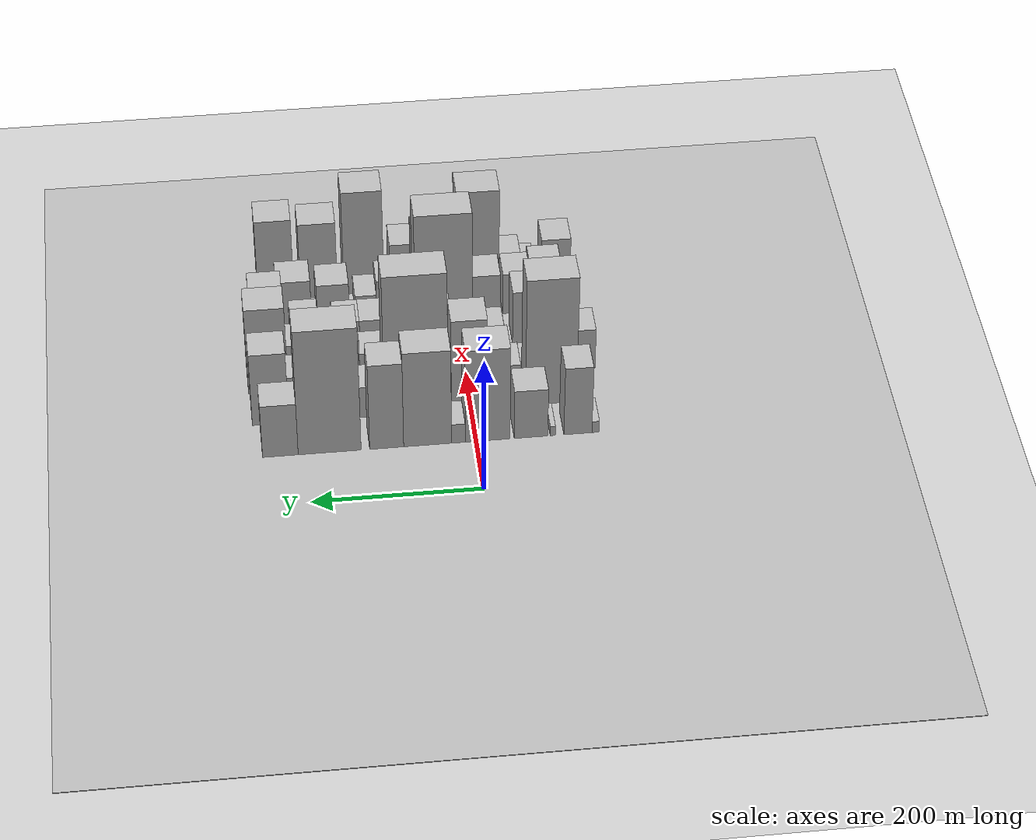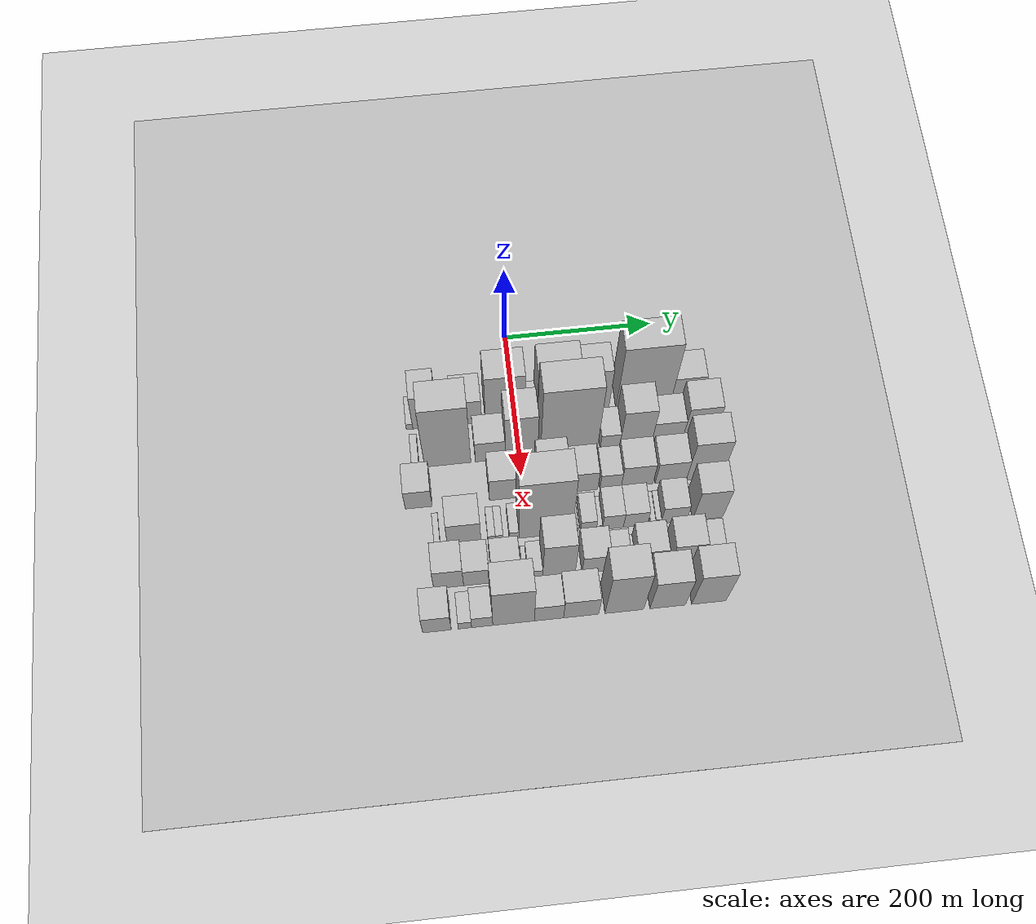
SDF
<sdf version="1.6">
 <world name="default">
  <include><name>ground_plane_1</name><uri>model://HANNAS_ground_plane</uri></include>
  <include>
   <name>ground_plane_2</name>
   <uri>model://HANNAS_ground_plane</uri>
   <pose>100 0 0  0 0 0</pose>
  </include>
  <model name="building_24">
   <static>1</static>
   <pose>100.0000 -140.2499 0 0.000000 0.000000 0.000000</pose>
   <link name="link">
    <pose>0 0 9.00 0 0 0</pose>
    <collision name="collision"><geometry><box><size>40.0000 8.7361 18.0000</size></box></geometry></collision>
    <visual name="visual">
     <cast_shadows>0</cast_shadows>
     <geometry><box><size>40.0000 8.7361 18.0000</size></box></geometry>
     <material>
      <script>
       <uri>model://HANNAS_wall/materials/scripts</uri>
       <uri>model://HANNAS_wall/materials/textures</uri>
       <name>vrc/HANNAS_wall</name>
      </script>
     </material>
    </visual>
   </link>
  </model>
  <model name="building_25">
   <static>1</static>
   <pose>100.0000 -119.2909 0 0.000000 0.000000 0.000000</pose>
   <link name="link">
    <pose>0 0 52.50 0 0 0</pose>
    <collision name="collision"><geometry><box><size>40.0000 33.1821 105.0000</size></box></geometry></collision>
    <visual name="visual">
     <cast_shadows>0</cast_shadows>
     <geometry><box><size>40.0000 33.1821 105.0000</size></box></geometry>
     <material>
      <script>
       <uri>model://HANNAS_wall/materials/scripts</uri>
       <uri>model://HANNAS_wall/materials/textures</uri>
       <name>vrc/HANNAS_wall</name>
      </script>
     </material>
    </visual>
   </link>
  </model>
  <model name="building_26">
   <static>1</static>
   <pose>100.0000 -89.6334 0 0.000000 0.000000 0.000000</pose>
   <link name="link">
    <pose>0 0 7.50 0 0 0</pose>
    <collision name="collision"><geometry><box><size>40.0000 6.1329 15.0000</size></box></geometry></collision>
    <visual name="visual">
     <cast_shadows>0</cast_shadows>
     <geometry><box><size>40.0000 6.1329 15.0000</size></box></geometry>
     <material>
      <script>
       <uri>model://HANNAS_wall/materials/scripts</uri>
       <uri>model://HANNAS_wall/materials/textures</uri>
       <name>vrc/HANNAS_wall</name>
      </script>
     </material>
    </visual>
   </link>
  </model>
  <model name="building_27">
   <static>1</static>
   <pose>100.0000 -63.7822 0 0.000000 0.000000 0.000000</pose>
   <link name="link">
    <pose>0 0 37.50 0 0 0</pose>
    <collision name="collision"><geometry><box><size>40.0000 39.5694 75.0000</size></box></geometry></collision>
    <visual name="visual">
     <cast_shadows>0</cast_shadows>
     <geometry><box><size>40.0000 39.5694 75.0000</size></box></geometry>
     <material>
      <script>
       <uri>model://HANNAS_wall/materials/scripts</uri>
       <uri>model://HANNAS_wall/materials/textures</uri>
       <name>vrc/HANNAS_wall</name>
      </script>
     </material>
    </visual>
   </link>
  </model>
  <model name="building_28">
   <static>1</static>
   <pose>100.0000 -12.6205 0 0.000000 0.000000 0.000000</pose>
   <link name="link">
    <pose>0 0 72.00 0 0 0</pose>
    <collision name="collision"><geometry><box><size>40.0000 52.7541 144.0000</size></box></geometry></collision>
    <visual name="visual">
     <cast_shadows>0</cast_shadows>
     <geometry><box><size>40.0000 52.7541 144.0000</size></box></geometry>
     <material>
      <script>
       <uri>model://HANNAS_wall/materials/scripts</uri>
       <uri>model://HANNAS_wall/materials/textures</uri>
       <name>vrc/HANNAS_wall</name>
      </script>
     </material>
    </visual>
   </link>
  </model>
  <model name="building_29">
   <static>1</static>
   <pose>100.0000 21.8884 0 0.000000 0.000000 0.000000</pose>
   <link name="link">
    <pose>0 0 15.00 0 0 0</pose>
    <collision name="collision"><geometry><box><size>40.0000 16.2637 30.0000</size></box></geometry></collision>
    <visual name="visual">
     <cast_shadows>0</cast_shadows>
     <geometry><box><size>40.0000 16.2637 30.0000</size></box></geometry>
     <material>
      <script>
       <uri>model://HANNAS_wall/materials/scripts</uri>
       <uri>model://HANNAS_wall/materials/textures</uri>
       <name>vrc/HANNAS_wall</name>
      </script>
     </material>
    </visual>
   </link>
  </model>
  <model name="building_30">
   <static>1</static>
   <pose>100.0000 58.0798 0 0.000000 0.000000 0.000000</pose>
   <link name="link">
    <pose>0 0 73.50 0 0 0</pose>
    <collision name="collision"><geometry><box><size>40.0000 56.1190 147.0000</size></box></geometry></collision>
    <visual name="visual">
     <cast_shadows>0</cast_shadows>
     <geometry><box><size>40.0000 56.1190 147.0000</size></box></geometry>
     <material>
      <script>
       <uri>model://HANNAS_wall/materials/scripts</uri>
       <uri>model://HANNAS_wall/materials/textures</uri>
       <name>vrc/HANNAS_wall</name>
      </script>
     </material>
    </visual>
   </link>
  </model>
  <model name="building_31">
   <static>1</static>
   <pose>100.0000 106.1186 0 0.000000 0.000000 0.000000</pose>
   <link name="link">
    <pose>0 0 66.00 0 0 0</pose>
    <collision name="collision"><geometry><box><size>40.0000 39.9587 132.0000</size></box></geometry></collision>
    <visual name="visual">
     <cast_shadows>0</cast_shadows>
     <geometry><box><size>40.0000 39.9587 132.0000</size></box></geometry>
     <material>
      <script>
       <uri>model://HANNAS_wall/materials/scripts</uri>
       <uri>model://HANNAS_wall/materials/textures</uri>
       <name>vrc/HANNAS_wall</name>
      </script>
     </material>
    </visual>
   </link>
  </model>
  <model name="building_32">
   <static>1</static>
   <pose>100.0000 172.9153 0 0.000000 0.000000 0.000000</pose>
   <link name="link">
    <pose>0 0 96.00 0 0 0</pose>
    <collision name="collision"><geometry><box><size>40.0000 73.6347 192.0000</size></box></geometry></collision>
    <visual name="visual">
     <cast_shadows>0</cast_shadows>
     <geometry><box><size>40.0000 73.6347 192.0000</size></box></geometry>
     <material>
      <script>
       <uri>model://HANNAS_wall/materials/scripts</uri>
       <uri>model://HANNAS_wall/materials/textures</uri>
       <name>vrc/HANNAS_wall</name>
      </script>
     </material>
    </visual>
   </link>
  </model>
  <model name="building_33">
   <static>1</static>
   <pose>100.0000 230.5214 0 0.000000 0.000000 0.000000</pose>
   <link name="link">
    <pose>0 0 40.50 0 0 0</pose>
    <collision name="collision"><geometry><box><size>40.0000 41.5774 81.0000</size></box></geometry></collision>
    <visual name="visual">
     <cast_shadows>0</cast_shadows>
     <geometry><box><size>40.0000 41.5774 81.0000</size></box></geometry>
     <material>
      <script>
       <uri>model://HANNAS_wall/materials/scripts</uri>
       <uri>model://HANNAS_wall/materials/textures</uri>
       <name>vrc/HANNAS_wall</name>
      </script>
     </material>
    </visual>
   </link>
  </model>
  <model name="building_82">
   <static>1</static>
   <pose>155.0000 -136.6144 0 0.000000 0.000000 0.000000</pose>
   <link name="link">
    <pose>0 0 10.50 0 0 0</pose>
    <collision name="collision"><geometry><box><size>40.0000 9.5594 21.0000</size></box></geometry></collision>
    <visual name="visual">
     <cast_shadows>0</cast_shadows>
     <geometry><box><size>40.0000 9.5594 21.0000</size></box></geometry>
     <material>
      <script>
       <uri>model://HANNAS_wall/materials/scripts</uri>
       <uri>model://HANNAS_wall/materials/textures</uri>
       <name>vrc/HANNAS_wall</name>
      </script>
     </material>
    </visual>
   </link>
  </model>
  <model name="building_83">
   <static>1</static>
   <pose>155.0000 -94.3068 0 0.000000 0.000000 0.000000</pose>
   <link name="link">
    <pose>0 0 97.50 0 0 0</pose>
    <collision name="collision"><geometry><box><size>40.0000 61.0559 195.0000</size></box></geometry></collision>
    <visual name="visual">
     <cast_shadows>0</cast_shadows>
     <geometry><box><size>40.0000 61.0559 195.0000</size></box></geometry>
     <material>
      <script>
       <uri>model://HANNAS_wall/materials/scripts</uri>
       <uri>model://HANNAS_wall/materials/textures</uri>
       <name>vrc/HANNAS_wall</name>
      </script>
     </material>
    </visual>
   </link>
  </model>
  <model name="building_84">
   <static>1</static>
   <pose>155.0000 -38.0167 0 0.000000 0.000000 0.000000</pose>
   <link name="link">
    <pose>0 0 33.00 0 0 0</pose>
    <collision name="collision"><geometry><box><size>40.0000 39.5242 66.0000</size></box></geometry></collision>
    <visual name="visual">
     <cast_shadows>0</cast_shadows>
     <geometry><box><size>40.0000 39.5242 66.0000</size></box></geometry>
     <material>
      <script>
       <uri>model://HANNAS_wall/materials/scripts</uri>
       <uri>model://HANNAS_wall/materials/textures</uri>
       <name>vrc/HANNAS_wall</name>
      </script>
     </material>
    </visual>
   </link>
  </model>
  <model name="building_85">
   <static>1</static>
   <pose>155.0000 3.1084 0 0.000000 0.000000 0.000000</pose>
   <link name="link">
    <pose>0 0 70.50 0 0 0</pose>
    <collision name="collision"><geometry><box><size>40.0000 42.7261 141.0000</size></box></geometry></collision>
    <visual name="visual">
     <cast_shadows>0</cast_shadows>
     <geometry><box><size>40.0000 42.7261 141.0000</size></box></geometry>
     <material>
      <script>
       <uri>model://HANNAS_wall/materials/scripts</uri>
       <uri>model://HANNAS_wall/materials/textures</uri>
       <name>vrc/HANNAS_wall</name>
      </script>
     </material>
    </visual>
   </link>
  </model>
  <model name="building_86">
   <static>1</static>
   <pose>155.0000 66.1215 0 0.000000 0.000000 0.000000</pose>
   <link name="link">
    <pose>0 0 108.00 0 0 0</pose>
    <collision name="collision"><geometry><box><size>40.0000 75.3001 216.0000</size></box></geometry></collision>
    <visual name="visual">
     <cast_shadows>0</cast_shadows>
     <geometry><box><size>40.0000 75.3001 216.0000</size></box></geometry>
     <material>
      <script>
       <uri>model://HANNAS_wall/materials/scripts</uri>
       <uri>model://HANNAS_wall/materials/textures</uri>
       <name>vrc/HANNAS_wall</name>
      </script>
     </material>
    </visual>
   </link>
  </model>
  <model name="building_87">
   <static>1</static>
   <pose>155.0000 120.7336 0 0.000000 0.000000 0.000000</pose>
   <link name="link">
    <pose>0 0 24.00 0 0 0</pose>
    <collision name="collision"><geometry><box><size>40.0000 25.9242 48.0000</size></box></geometry></collision>
    <visual name="visual">
     <cast_shadows>0</cast_shadows>
     <geometry><box><size>40.0000 25.9242 48.0000</size></box></geometry>
     <material>
      <script>
       <uri>model://HANNAS_wall/materials/scripts</uri>
       <uri>model://HANNAS_wall/materials/textures</uri>
       <name>vrc/HANNAS_wall</name>
      </script>
     </material>
    </visual>
   </link>
  </model>
  <model name="building_88">
   <static>1</static>
   <pose>155.0000 154.8827 0 0.000000 0.000000 0.000000</pose>
   <link name="link">
    <pose>0 0 60.00 0 0 0</pose>
    <collision name="collision"><geometry><box><size>40.0000 42.3740 120.0000</size></box></geometry></collision>
    <visual name="visual">
     <cast_shadows>0</cast_shadows>
     <geometry><box><size>40.0000 42.3740 120.0000</size></box></geometry>
     <material>
      <script>
       <uri>model://HANNAS_wall/materials/scripts</uri>
       <uri>model://HANNAS_wall/materials/textures</uri>
       <name>vrc/HANNAS_wall</name>
      </script>
     </material>
    </visual>
   </link>
  </model>
  <model name="building_89">
   <static>1</static>
   <pose>155.0000 196.5788 0 0.000000 0.000000 0.000000</pose>
   <link name="link">
    <pose>0 0 36.00 0 0 0</pose>
    <collision name="collision"><geometry><box><size>40.0000 41.0181 72.0000</size></box></geometry></collision>
    <visual name="visual">
     <cast_shadows>0</cast_shadows>
     <geometry><box><size>40.0000 41.0181 72.0000</size></box></geometry>
     <material>
      <script>
       <uri>model://HANNAS_wall/materials/scripts</uri>
       <uri>model://HANNAS_wall/materials/textures</uri>
       <name>vrc/HANNAS_wall</name>
      </script>
     </material>
    </visual>
   </link>
  </model>
  <model name="building_90">
   <static>1</static>
   <pose>155.0000 238.5612 0 0.000000 0.000000 0.000000</pose>
   <link name="link">
    <pose>0 0 55.50 0 0 0</pose>
    <collision name="collision"><geometry><box><size>40.0000 42.9466 111.0000</size></box></geometry></collision>
    <visual name="visual">
     <cast_shadows>0</cast_shadows>
     <geometry><box><size>40.0000 42.9466 111.0000</size></box></geometry>
     <material>
      <script>
       <uri>model://HANNAS_wall/materials/scripts</uri>
       <uri>model://HANNAS_wall/materials/textures</uri>
       <name>vrc/HANNAS_wall</name>
      </script>
     </material>
    </visual>
   </link>
  </model>
  <model name="building_134">
   <static>1</static>
   <pose>210.0000 -137.1016 0 0.000000 0.000000 0.000000</pose>
   <link name="link">
    <pose>0 0 31.50 0 0 0</pose>
    <collision name="collision"><geometry><box><size>40.0000 34.9675 63.0000</size></box></geometry></collision>
    <visual name="visual">
     <cast_shadows>0</cast_shadows>
     <geometry><box><size>40.0000 34.9675 63.0000</size></box></geometry>
     <material>
      <script>
       <uri>model://HANNAS_wall/materials/scripts</uri>
       <uri>model://HANNAS_wall/materials/textures</uri>
       <name>vrc/HANNAS_wall</name>
      </script>
     </material>
    </visual>
   </link>
  </model>
  <model name="building_135">
   <static>1</static>
   <pose>210.0000 -24.8604 0 0.000000 0.000000 0.000000</pose>
   <link name="link">
    <pose>0 0 37.50 0 0 0</pose>
    <collision name="collision"><geometry><box><size>40.0000 39.8383 75.0000</size></box></geometry></collision>
    <visual name="visual">
     <cast_shadows>0</cast_shadows>
     <geometry><box><size>40.0000 39.8383 75.0000</size></box></geometry>
     <material>
      <script>
       <uri>model://HANNAS_wall/materials/scripts</uri>
       <uri>model://HANNAS_wall/materials/textures</uri>
       <name>vrc/HANNAS_wall</name>
      </script>
     </material>
    </visual>
   </link>
  </model>
  <model name="building_136">
   <static>1</static>
   <pose>210.0000 5.1250 0 0.000000 0.000000 0.000000</pose>
   <link name="link">
    <pose>0 0 19.50 0 0 0</pose>
    <collision name="collision"><geometry><box><size>40.0000 20.1325 39.0000</size></box></geometry></collision>
    <visual name="visual">
     <cast_shadows>0</cast_shadows>
     <geometry><box><size>40.0000 20.1325 39.0000</size></box></geometry>
     <material>
      <script>
       <uri>model://HANNAS_wall/materials/scripts</uri>
       <uri>model://HANNAS_wall/materials/textures</uri>
       <name>vrc/HANNAS_wall</name>
      </script>
     </material>
    </visual>
   </link>
  </model>
  <model name="building_137">
   <static>1</static>
   <pose>210.0000 38.1021 0 0.000000 0.000000 0.000000</pose>
   <link name="link">
    <pose>0 0 51.00 0 0 0</pose>
    <collision name="collision"><geometry><box><size>40.0000 39.8217 102.0000</size></box></geometry></collision>
    <visual name="visual">
     <cast_shadows>0</cast_shadows>
     <geometry><box><size>40.0000 39.8217 102.0000</size></box></geometry>
     <material>
      <script>
       <uri>model://HANNAS_wall/materials/scripts</uri>
       <uri>model://HANNAS_wall/materials/textures</uri>
       <name>vrc/HANNAS_wall</name>
      </script>
     </material>
    </visual>
   </link>
  </model>
  <model name="building_138">
   <static>1</static>
   <pose>210.0000 77.6585 0 0.000000 0.000000 0.000000</pose>
   <link name="link">
    <pose>0 0 33.00 0 0 0</pose>
    <collision name="collision"><geometry><box><size>40.0000 39.2911 66.0000</size></box></geometry></collision>
    <visual name="visual">
     <cast_shadows>0</cast_shadows>
     <geometry><box><size>40.0000 39.2911 66.0000</size></box></geometry>
     <material>
      <script>
       <uri>model://HANNAS_wall/materials/scripts</uri>
       <uri>model://HANNAS_wall/materials/textures</uri>
       <name>vrc/HANNAS_wall</name>
      </script>
     </material>
    </visual>
   </link>
  </model>
  <model name="building_139">
   <static>1</static>
   <pose>210.0000 114.2788 0 0.000000 0.000000 0.000000</pose>
   <link name="link">
    <pose>0 0 25.50 0 0 0</pose>
    <collision name="collision"><geometry><box><size>40.0000 27.9495 51.0000</size></box></geometry></collision>
    <visual name="visual">
     <cast_shadows>0</cast_shadows>
     <geometry><box><size>40.0000 27.9495 51.0000</size></box></geometry>
     <material>
      <script>
       <uri>model://HANNAS_wall/materials/scripts</uri>
       <uri>model://HANNAS_wall/materials/textures</uri>
       <name>vrc/HANNAS_wall</name>
      </script>
     </material>
    </visual>
   </link>
  </model>
  <model name="building_140">
   <static>1</static>
   <pose>210.0000 149.2164 0 0.000000 0.000000 0.000000</pose>
   <link name="link">
    <pose>0 0 36.00 0 0 0</pose>
    <collision name="collision"><geometry><box><size>40.0000 41.9258 72.0000</size></box></geometry></collision>
    <visual name="visual">
     <cast_shadows>0</cast_shadows>
     <geometry><box><size>40.0000 41.9258 72.0000</size></box></geometry>
     <material>
      <script>
       <uri>model://HANNAS_wall/materials/scripts</uri>
       <uri>model://HANNAS_wall/materials/textures</uri>
       <name>vrc/HANNAS_wall</name>
      </script>
     </material>
    </visual>
   </link>
  </model>
  <model name="building_141">
   <static>1</static>
   <pose>210.0000 193.6788 0 0.000000 0.000000 0.000000</pose>
   <link name="link">
    <pose>0 0 36.00 0 0 0</pose>
    <collision name="collision"><geometry><box><size>40.0000 40.9989 72.0000</size></box></geometry></collision>
    <visual name="visual">
     <cast_shadows>0</cast_shadows>
     <geometry><box><size>40.0000 40.9989 72.0000</size></box></geometry>
     <material>
      <script>
       <uri>model://HANNAS_wall/materials/scripts</uri>
       <uri>model://HANNAS_wall/materials/textures</uri>
       <name>vrc/HANNAS_wall</name>
      </script>
     </material>
    </visual>
   </link>
  </model>
  <model name="building_142">
   <static>1</static>
   <pose>210.0000 237.8310 0 0.000000 0.000000 0.000000</pose>
   <link name="link">
    <pose>0 0 66.00 0 0 0</pose>
    <collision name="collision"><geometry><box><size>40.0000 47.3056 132.0000</size></box></geometry></collision>
    <visual name="visual">
     <cast_shadows>0</cast_shadows>
     <geometry><box><size>40.0000 47.3056 132.0000</size></box></geometry>
     <material>
      <script>
       <uri>model://HANNAS_wall/materials/scripts</uri>
       <uri>model://HANNAS_wall/materials/textures</uri>
       <name>vrc/HANNAS_wall</name>
      </script>
     </material>
    </visual>
   </link>
  </model>
  <model name="building_184">
   <static>1</static>
   <pose>265.0000 -117.5953 0 0.000000 0.000000 0.000000</pose>
   <link name="link">
    <pose>0 0 9.00 0 0 0</pose>
    <collision name="collision"><geometry><box><size>40.0000 7.7228 18.0000</size></box></geometry></collision>
    <visual name="visual">
     <cast_shadows>0</cast_shadows>
     <geometry><box><size>40.0000 7.7228 18.0000</size></box></geometry>
     <material>
      <script>
       <uri>model://HANNAS_wall/materials/scripts</uri>
       <uri>model://HANNAS_wall/materials/textures</uri>
       <name>vrc/HANNAS_wall</name>
      </script>
     </material>
    </visual>
   </link>
  </model>
  <model name="building_185">
   <static>1</static>
   <pose>265.0000 -83.0072 0 0.000000 0.000000 0.000000</pose>
   <link name="link">
    <pose>0 0 40.50 0 0 0</pose>
    <collision name="collision"><geometry><box><size>40.0000 43.4536 81.0000</size></box></geometry></collision>
    <visual name="visual">
     <cast_shadows>0</cast_shadows>
     <geometry><box><size>40.0000 43.4536 81.0000</size></box></geometry>
     <material>
      <script>
       <uri>model://HANNAS_wall/materials/scripts</uri>
       <uri>model://HANNAS_wall/materials/textures</uri>
       <name>vrc/HANNAS_wall</name>
      </script>
     </material>
    </visual>
   </link>
  </model>
  <model name="building_186">
   <static>1</static>
   <pose>265.0000 -47.4554 0 0.000000 0.000000 0.000000</pose>
   <link name="link">
    <pose>0 0 10.50 0 0 0</pose>
    <collision name="collision"><geometry><box><size>40.0000 9.6500 21.0000</size></box></geometry></collision>
    <visual name="visual">
     <cast_shadows>0</cast_shadows>
     <geometry><box><size>40.0000 9.6500 21.0000</size></box></geometry>
     <material>
      <script>
       <uri>model://HANNAS_wall/materials/scripts</uri>
       <uri>model://HANNAS_wall/materials/textures</uri>
       <name>vrc/HANNAS_wall</name>
      </script>
     </material>
    </visual>
   </link>
  </model>
  <model name="building_187">
   <static>1</static>
   <pose>265.0000 -37.6327 0 0.000000 0.000000 0.000000</pose>
   <link name="link">
    <pose>0 0 10.50 0 0 0</pose>
    <collision name="collision"><geometry><box><size>40.0000 9.9954 21.0000</size></box></geometry></collision>
    <visual name="visual">
     <cast_shadows>0</cast_shadows>
     <geometry><box><size>40.0000 9.9954 21.0000</size></box></geometry>
     <material>
      <script>
       <uri>model://HANNAS_wall/materials/scripts</uri>
       <uri>model://HANNAS_wall/materials/textures</uri>
       <name>vrc/HANNAS_wall</name>
      </script>
     </material>
    </visual>
   </link>
  </model>
  <model name="building_188">
   <static>1</static>
   <pose>265.0000 -18.4343 0 0.000000 0.000000 0.000000</pose>
   <link name="link">
    <pose>0 0 13.50 0 0 0</pose>
    <collision name="collision"><geometry><box><size>40.0000 12.4015 27.0000</size></box></geometry></collision>
    <visual name="visual">
     <cast_shadows>0</cast_shadows>
     <geometry><box><size>40.0000 12.4015 27.0000</size></box></geometry>
     <material>
      <script>
       <uri>model://HANNAS_wall/materials/scripts</uri>
       <uri>model://HANNAS_wall/materials/textures</uri>
       <name>vrc/HANNAS_wall</name>
      </script>
     </material>
    </visual>
   </link>
  </model>
  <model name="building_189">
   <static>1</static>
   <pose>265.0000 22.1386 0 0.000000 0.000000 0.000000</pose>
   <link name="link">
    <pose>0 0 105.00 0 0 0</pose>
    <collision name="collision"><geometry><box><size>40.0000 68.7443 210.0000</size></box></geometry></collision>
    <visual name="visual">
     <cast_shadows>0</cast_shadows>
     <geometry><box><size>40.0000 68.7443 210.0000</size></box></geometry>
     <material>
      <script>
       <uri>model://HANNAS_wall/materials/scripts</uri>
       <uri>model://HANNAS_wall/materials/textures</uri>
       <name>vrc/HANNAS_wall</name>
      </script>
     </material>
    </visual>
   </link>
  </model>
  <model name="building_190">
   <static>1</static>
   <pose>265.0000 60.6713 0 0.000000 0.000000 0.000000</pose>
   <link name="link">
    <pose>0 0 9.00 0 0 0</pose>
    <collision name="collision"><geometry><box><size>40.0000 8.3212 18.0000</size></box></geometry></collision>
    <visual name="visual">
     <cast_shadows>0</cast_shadows>
     <geometry><box><size>40.0000 8.3212 18.0000</size></box></geometry>
     <material>
      <script>
       <uri>model://HANNAS_wall/materials/scripts</uri>
       <uri>model://HANNAS_wall/materials/textures</uri>
       <name>vrc/HANNAS_wall</name>
      </script>
     </material>
    </visual>
   </link>
  </model>
  <model name="building_191">
   <static>1</static>
   <pose>265.0000 78.1643 0 0.000000 0.000000 0.000000</pose>
   <link name="link">
    <pose>0 0 19.50 0 0 0</pose>
    <collision name="collision"><geometry><box><size>40.0000 20.6649 39.0000</size></box></geometry></collision>
    <visual name="visual">
     <cast_shadows>0</cast_shadows>
     <geometry><box><size>40.0000 20.6649 39.0000</size></box></geometry>
     <material>
      <script>
       <uri>model://HANNAS_wall/materials/scripts</uri>
       <uri>model://HANNAS_wall/materials/textures</uri>
       <name>vrc/HANNAS_wall</name>
      </script>
     </material>
    </visual>
   </link>
  </model>
  <model name="building_192">
   <static>1</static>
   <pose>265.0000 92.3054 0 0.000000 0.000000 0.000000</pose>
   <link name="link">
    <pose>0 0 9.00 0 0 0</pose>
    <collision name="collision"><geometry><box><size>40.0000 7.6173 18.0000</size></box></geometry></collision>
    <visual name="visual">
     <cast_shadows>0</cast_shadows>
     <geometry><box><size>40.0000 7.6173 18.0000</size></box></geometry>
     <material>
      <script>
       <uri>model://HANNAS_wall/materials/scripts</uri>
       <uri>model://HANNAS_wall/materials/textures</uri>
       <name>vrc/HANNAS_wall</name>
      </script>
     </material>
    </visual>
   </link>
  </model>
  <model name="building_193">
   <static>1</static>
   <pose>265.0000 109.8860 0 0.000000 0.000000 0.000000</pose>
   <link name="link">
    <pose>0 0 27.00 0 0 0</pose>
    <collision name="collision"><geometry><box><size>40.0000 27.5439 54.0000</size></box></geometry></collision>
    <visual name="visual">
     <cast_shadows>0</cast_shadows>
     <geometry><box><size>40.0000 27.5439 54.0000</size></box></geometry>
     <material>
      <script>
       <uri>model://HANNAS_wall/materials/scripts</uri>
       <uri>model://HANNAS_wall/materials/textures</uri>
       <name>vrc/HANNAS_wall</name>
      </script>
     </material>
    </visual>
   </link>
  </model>
  <model name="building_194">
   <static>1</static>
   <pose>265.0000 139.3645 0 0.000000 0.000000 0.000000</pose>
   <link name="link">
    <pose>0 0 27.00 0 0 0</pose>
    <collision name="collision"><geometry><box><size>40.0000 31.4130 54.0000</size></box></geometry></collision>
    <visual name="visual">
     <cast_shadows>0</cast_shadows>
     <geometry><box><size>40.0000 31.4130 54.0000</size></box></geometry>
     <material>
      <script>
       <uri>model://HANNAS_wall/materials/scripts</uri>
       <uri>model://HANNAS_wall/materials/textures</uri>
       <name>vrc/HANNAS_wall</name>
      </script>
     </material>
    </visual>
   </link>
  </model>
  <model name="building_195">
   <static>1</static>
   <pose>265.0000 161.6442 0 0.000000 0.000000 0.000000</pose>
   <link name="link">
    <pose>0 0 7.50 0 0 0</pose>
    <collision name="collision"><geometry><box><size>40.0000 7.1464 15.0000</size></box></geometry></collision>
    <visual name="visual">
     <cast_shadows>0</cast_shadows>
     <geometry><box><size>40.0000 7.1464 15.0000</size></box></geometry>
     <material>
      <script>
       <uri>model://HANNAS_wall/materials/scripts</uri>
       <uri>model://HANNAS_wall/materials/textures</uri>
       <name>vrc/HANNAS_wall</name>
      </script>
     </material>
    </visual>
   </link>
  </model>
  <model name="building_196">
   <static>1</static>
   <pose>265.0000 168.8828 0 0.000000 0.000000 0.000000</pose>
   <link name="link">
    <pose>0 0 9.00 0 0 0</pose>
    <collision name="collision"><geometry><box><size>40.0000 7.3307 18.0000</size></box></geometry></collision>
    <visual name="visual">
     <cast_shadows>0</cast_shadows>
     <geometry><box><size>40.0000 7.3307 18.0000</size></box></geometry>
     <material>
      <script>
       <uri>model://HANNAS_wall/materials/scripts</uri>
       <uri>model://HANNAS_wall/materials/textures</uri>
       <name>vrc/HANNAS_wall</name>
      </script>
     </material>
    </visual>
   </link>
  </model>
  <model name="building_197">
   <static>1</static>
   <pose>265.0000 189.3109 0 0.000000 0.000000 0.000000</pose>
   <link name="link">
    <pose>0 0 30.00 0 0 0</pose>
    <collision name="collision"><geometry><box><size>40.0000 33.5255 60.0000</size></box></geometry></collision>
    <visual name="visual">
     <cast_shadows>0</cast_shadows>
     <geometry><box><size>40.0000 33.5255 60.0000</size></box></geometry>
     <material>
      <script>
       <uri>model://HANNAS_wall/materials/scripts</uri>
       <uri>model://HANNAS_wall/materials/textures</uri>
       <name>vrc/HANNAS_wall</name>
      </script>
     </material>
    </visual>
   </link>
  </model>
  <model name="building_198">
   <static>1</static>
   <pose>265.0000 233.9540 0 0.000000 0.000000 0.000000</pose>
   <link name="link">
    <pose>0 0 54.00 0 0 0</pose>
    <collision name="collision"><geometry><box><size>40.0000 39.7608 108.0000</size></box></geometry></collision>
    <visual name="visual">
     <cast_shadows>0</cast_shadows>
     <geometry><box><size>40.0000 39.7608 108.0000</size></box></geometry>
     <material>
      <script>
       <uri>model://HANNAS_wall/materials/scripts</uri>
       <uri>model://HANNAS_wall/materials/textures</uri>
       <name>vrc/HANNAS_wall</name>
      </script>
     </material>
    </visual>
   </link>
  </model>
  <model name="building_243">
   <static>1</static>
   <pose>320.0000 -108.0655 0 0.000000 0.000000 0.000000</pose>
   <link name="link">
    <pose>0 0 36.00 0 0 0</pose>
    <collision name="collision"><geometry><box><size>40.0000 37.9996 72.0000</size></box></geometry></collision>
    <visual name="visual">
     <cast_shadows>0</cast_shadows>
     <geometry><box><size>40.0000 37.9996 72.0000</size></box></geometry>
     <material>
      <script>
       <uri>model://HANNAS_wall/materials/scripts</uri>
       <uri>model://HANNAS_wall/materials/textures</uri>
       <name>vrc/HANNAS_wall</name>
      </script>
     </material>
    </visual>
   </link>
  </model>
  <model name="building_244">
   <static>1</static>
   <pose>320.0000 -72.4253 0 0.000000 0.000000 0.000000</pose>
   <link name="link">
    <pose>0 0 31.50 0 0 0</pose>
    <collision name="collision"><geometry><box><size>40.0000 33.2808 63.0000</size></box></geometry></collision>
    <visual name="visual">
     <cast_shadows>0</cast_shadows>
     <geometry><box><size>40.0000 33.2808 63.0000</size></box></geometry>
     <material>
      <script>
       <uri>model://HANNAS_wall/materials/scripts</uri>
       <uri>model://HANNAS_wall/materials/textures</uri>
       <name>vrc/HANNAS_wall</name>
      </script>
     </material>
    </visual>
   </link>
  </model>
  <model name="building_245">
   <static>1</static>
   <pose>320.0000 -34.4073 0 0.000000 0.000000 0.000000</pose>
   <link name="link">
    <pose>0 0 31.50 0 0 0</pose>
    <collision name="collision"><geometry><box><size>40.0000 36.7551 63.0000</size></box></geometry></collision>
    <visual name="visual">
     <cast_shadows>0</cast_shadows>
     <geometry><box><size>40.0000 36.7551 63.0000</size></box></geometry>
     <material>
      <script>
       <uri>model://HANNAS_wall/materials/scripts</uri>
       <uri>model://HANNAS_wall/materials/textures</uri>
       <name>vrc/HANNAS_wall</name>
      </script>
     </material>
    </visual>
   </link>
  </model>
  <model name="building_246">
   <static>1</static>
   <pose>320.0000 -9.8693 0 0.000000 0.000000 0.000000</pose>
   <link name="link">
    <pose>0 0 7.50 0 0 0</pose>
    <collision name="collision"><geometry><box><size>40.0000 6.3210 15.0000</size></box></geometry></collision>
    <visual name="visual">
     <cast_shadows>0</cast_shadows>
     <geometry><box><size>40.0000 6.3210 15.0000</size></box></geometry>
     <material>
      <script>
       <uri>model://HANNAS_wall/materials/scripts</uri>
       <uri>model://HANNAS_wall/materials/textures</uri>
       <name>vrc/HANNAS_wall</name>
      </script>
     </material>
    </visual>
   </link>
  </model>
  <model name="building_247">
   <static>1</static>
   <pose>320.0000 2.7315 0 0.000000 0.000000 0.000000</pose>
   <link name="link">
    <pose>0 0 16.50 0 0 0</pose>
    <collision name="collision"><geometry><box><size>40.0000 18.8804 33.0000</size></box></geometry></collision>
    <visual name="visual">
     <cast_shadows>0</cast_shadows>
     <geometry><box><size>40.0000 18.8804 33.0000</size></box></geometry>
     <material>
      <script>
       <uri>model://HANNAS_wall/materials/scripts</uri>
       <uri>model://HANNAS_wall/materials/textures</uri>
       <name>vrc/HANNAS_wall</name>
      </script>
     </material>
    </visual>
   </link>
  </model>
  <model name="building_248">
   <static>1</static>
   <pose>320.0000 33.0349 0 0.000000 0.000000 0.000000</pose>
   <link name="link">
    <pose>0 0 66.00 0 0 0</pose>
    <collision name="collision"><geometry><box><size>40.0000 41.7265 132.0000</size></box></geometry></collision>
    <visual name="visual">
     <cast_shadows>0</cast_shadows>
     <geometry><box><size>40.0000 41.7265 132.0000</size></box></geometry>
     <material>
      <script>
       <uri>model://HANNAS_wall/materials/scripts</uri>
       <uri>model://HANNAS_wall/materials/textures</uri>
       <name>vrc/HANNAS_wall</name>
      </script>
     </material>
    </visual>
   </link>
  </model>
  <model name="building_249">
   <static>1</static>
   <pose>320.0000 80.7335 0 0.000000 0.000000 0.000000</pose>
   <link name="link">
    <pose>0 0 33.00 0 0 0</pose>
    <collision name="collision"><geometry><box><size>40.0000 35.6706 66.0000</size></box></geometry></collision>
    <visual name="visual">
     <cast_shadows>0</cast_shadows>
     <geometry><box><size>40.0000 35.6706 66.0000</size></box></geometry>
     <material>
      <script>
       <uri>model://HANNAS_wall/materials/scripts</uri>
       <uri>model://HANNAS_wall/materials/textures</uri>
       <name>vrc/HANNAS_wall</name>
      </script>
     </material>
    </visual>
   </link>
  </model>
  <model name="building_250">
   <static>1</static>
   <pose>320.0000 111.6072 0 0.000000 0.000000 0.000000</pose>
   <link name="link">
    <pose>0 0 22.50 0 0 0</pose>
    <collision name="collision"><geometry><box><size>40.0000 26.0766 45.0000</size></box></geometry></collision>
    <visual name="visual">
     <cast_shadows>0</cast_shadows>
     <geometry><box><size>40.0000 26.0766 45.0000</size></box></geometry>
     <material>
      <script>
       <uri>model://HANNAS_wall/materials/scripts</uri>
       <uri>model://HANNAS_wall/materials/textures</uri>
       <name>vrc/HANNAS_wall</name>
      </script>
     </material>
    </visual>
   </link>
  </model>
  <model name="building_251">
   <static>1</static>
   <pose>320.0000 128.2741 0 0.000000 0.000000 0.000000</pose>
   <link name="link">
    <pose>0 0 7.50 0 0 0</pose>
    <collision name="collision"><geometry><box><size>40.0000 7.2572 15.0000</size></box></geometry></collision>
    <visual name="visual">
     <cast_shadows>0</cast_shadows>
     <geometry><box><size>40.0000 7.2572 15.0000</size></box></geometry>
     <material>
      <script>
       <uri>model://HANNAS_wall/materials/scripts</uri>
       <uri>model://HANNAS_wall/materials/textures</uri>
       <name>vrc/HANNAS_wall</name>
      </script>
     </material>
    </visual>
   </link>
  </model>
  <model name="building_252">
   <static>1</static>
   <pose>320.0000 151.5006 0 0.000000 0.000000 0.000000</pose>
   <link name="link">
    <pose>0 0 33.00 0 0 0</pose>
    <collision name="collision"><geometry><box><size>40.0000 39.1958 66.0000</size></box></geometry></collision>
    <visual name="visual">
     <cast_shadows>0</cast_shadows>
     <geometry><box><size>40.0000 39.1958 66.0000</size></box></geometry>
     <material>
      <script>
       <uri>model://HANNAS_wall/materials/scripts</uri>
       <uri>model://HANNAS_wall/materials/textures</uri>
       <name>vrc/HANNAS_wall</name>
      </script>
     </material>
    </visual>
   </link>
  </model>
  <model name="building_253">
   <static>1</static>
   <pose>320.0000 198.6561 0 0.000000 0.000000 0.000000</pose>
   <link name="link">
    <pose>0 0 37.50 0 0 0</pose>
    <collision name="collision"><geometry><box><size>40.0000 41.1152 75.0000</size></box></geometry></collision>
    <visual name="visual">
     <cast_shadows>0</cast_shadows>
     <geometry><box><size>40.0000 41.1152 75.0000</size></box></geometry>
     <material>
      <script>
       <uri>model://HANNAS_wall/materials/scripts</uri>
       <uri>model://HANNAS_wall/materials/textures</uri>
       <name>vrc/HANNAS_wall</name>
      </script>
     </material>
    </visual>
   </link>
  </model>
  <model name="building_254">
   <static>1</static>
   <pose>320.0000 232.0082 0 0.000000 0.000000 0.000000</pose>
   <link name="link">
    <pose>0 0 24.00 0 0 0</pose>
    <collision name="collision"><geometry><box><size>40.0000 25.5889 48.0000</size></box></geometry></collision>
    <visual name="visual">
     <cast_shadows>0</cast_shadows>
     <geometry><box><size>40.0000 25.5889 48.0000</size></box></geometry>
     <material>
      <script>
       <uri>model://HANNAS_wall/materials/scripts</uri>
       <uri>model://HANNAS_wall/materials/textures</uri>
       <name>vrc/HANNAS_wall</name>
      </script>
     </material>
    </visual>
   </link>
  </model>
  <model name="building_293">
   <static>1</static>
   <pose>375.0000 -127.8943 0 0.000000 0.000000 0.000000</pose>
   <link name="link">
    <pose>0 0 33.00 0 0 0</pose>
    <collision name="collision"><geometry><box><size>40.0000 35.9996 66.0000</size></box></geometry></collision>
    <visual name="visual">
     <cast_shadows>0</cast_shadows>
     <geometry><box><size>40.0000 35.9996 66.0000</size></box></geometry>
     <material>
      <script>
       <uri>model://HANNAS_wall/materials/scripts</uri>
       <uri>model://HANNAS_wall/materials/textures</uri>
       <name>vrc/HANNAS_wall</name>
      </script>
     </material>
    </visual>
   </link>
  </model>
  <model name="building_294">
   <static>1</static>
   <pose>375.0000 -92.4776 0 0.000000 0.000000 0.000000</pose>
   <link name="link">
    <pose>0 0 15.00 0 0 0</pose>
    <collision name="collision"><geometry><box><size>40.0000 16.8340 30.0000</size></box></geometry></collision>
    <visual name="visual">
     <cast_shadows>0</cast_shadows>
     <geometry><box><size>40.0000 16.8340 30.0000</size></box></geometry>
     <material>
      <script>
       <uri>model://HANNAS_wall/materials/scripts</uri>
       <uri>model://HANNAS_wall/materials/textures</uri>
       <name>vrc/HANNAS_wall</name>
      </script>
     </material>
    </visual>
   </link>
  </model>
  <model name="building_295">
   <static>1</static>
   <pose>375.0000 -70.6773 0 0.000000 0.000000 0.000000</pose>
   <link name="link">
    <pose>0 0 22.50 0 0 0</pose>
    <collision name="collision"><geometry><box><size>40.0000 26.7665 45.0000</size></box></geometry></collision>
    <visual name="visual">
     <cast_shadows>0</cast_shadows>
     <geometry><box><size>40.0000 26.7665 45.0000</size></box></geometry>
     <material>
      <script>
       <uri>model://HANNAS_wall/materials/scripts</uri>
       <uri>model://HANNAS_wall/materials/textures</uri>
       <name>vrc/HANNAS_wall</name>
      </script>
     </material>
    </visual>
   </link>
  </model>
  <model name="building_296">
   <static>1</static>
   <pose>375.0000 -30.9337 0 0.000000 0.000000 0.000000</pose>
   <link name="link">
    <pose>0 0 75.00 0 0 0</pose>
    <collision name="collision"><geometry><box><size>40.0000 52.7207 150.0000</size></box></geometry></collision>
    <visual name="visual">
     <cast_shadows>0</cast_shadows>
     <geometry><box><size>40.0000 52.7207 150.0000</size></box></geometry>
     <material>
      <script>
       <uri>model://HANNAS_wall/materials/scripts</uri>
       <uri>model://HANNAS_wall/materials/textures</uri>
       <name>vrc/HANNAS_wall</name>
      </script>
     </material>
    </visual>
   </link>
  </model>
  <model name="building_297">
   <static>1</static>
   <pose>375.0000 13.9760 0 0.000000 0.000000 0.000000</pose>
   <link name="link">
    <pose>0 0 33.00 0 0 0</pose>
    <collision name="collision"><geometry><box><size>40.0000 37.0986 66.0000</size></box></geometry></collision>
    <visual name="visual">
     <cast_shadows>0</cast_shadows>
     <geometry><box><size>40.0000 37.0986 66.0000</size></box></geometry>
     <material>
      <script>
       <uri>model://HANNAS_wall/materials/scripts</uri>
       <uri>model://HANNAS_wall/materials/textures</uri>
       <name>vrc/HANNAS_wall</name>
      </script>
     </material>
    </visual>
   </link>
  </model>
  <model name="building_298">
   <static>1</static>
   <pose>375.0000 54.8957 0 0.000000 0.000000 0.000000</pose>
   <link name="link">
    <pose>0 0 37.50 0 0 0</pose>
    <collision name="collision"><geometry><box><size>40.0000 44.7409 75.0000</size></box></geometry></collision>
    <visual name="visual">
     <cast_shadows>0</cast_shadows>
     <geometry><box><size>40.0000 44.7409 75.0000</size></box></geometry>
     <material>
      <script>
       <uri>model://HANNAS_wall/materials/scripts</uri>
       <uri>model://HANNAS_wall/materials/textures</uri>
       <name>vrc/HANNAS_wall</name>
      </script>
     </material>
    </visual>
   </link>
  </model>
  <model name="building_299">
   <static>1</static>
   <pose>375.0000 109.9069 0 0.000000 0.000000 0.000000</pose>
   <link name="link">
    <pose>0 0 81.00 0 0 0</pose>
    <collision name="collision"><geometry><box><size>40.0000 49.2814 162.0000</size></box></geometry></collision>
    <visual name="visual">
     <cast_shadows>0</cast_shadows>
     <geometry><box><size>40.0000 49.2814 162.0000</size></box></geometry>
     <material>
      <script>
       <uri>model://HANNAS_wall/materials/scripts</uri>
       <uri>model://HANNAS_wall/materials/textures</uri>
       <name>vrc/HANNAS_wall</name>
      </script>
     </material>
    </visual>
   </link>
  </model>
  <model name="building_300">
   <static>1</static>
   <pose>375.0000 165.3283 0 0.000000 0.000000 0.000000</pose>
   <link name="link">
    <pose>0 0 58.50 0 0 0</pose>
    <collision name="collision"><geometry><box><size>40.0000 45.5615 117.0000</size></box></geometry></collision>
    <visual name="visual">
     <cast_shadows>0</cast_shadows>
     <geometry><box><size>40.0000 45.5615 117.0000</size></box></geometry>
     <material>
      <script>
       <uri>model://HANNAS_wall/materials/scripts</uri>
       <uri>model://HANNAS_wall/materials/textures</uri>
       <name>vrc/HANNAS_wall</name>
      </script>
     </material>
    </visual>
   </link>
  </model>
  <model name="building_301">
   <static>1</static>
   <pose>375.0000 218.1761 0 0.000000 0.000000 0.000000</pose>
   <link name="link">
    <pose>0 0 63.00 0 0 0</pose>
    <collision name="collision"><geometry><box><size>40.0000 44.1341 126.0000</size></box></geometry></collision>
    <visual name="visual">
     <cast_shadows>0</cast_shadows>
     <geometry><box><size>40.0000 44.1341 126.0000</size></box></geometry>
     <material>
      <script>
       <uri>model://HANNAS_wall/materials/scripts</uri>
       <uri>model://HANNAS_wall/materials/textures</uri>
       <name>vrc/HANNAS_wall</name>
      </script>
     </material>
    </visual>
   </link>
  </model>
 </world>
</sdf>
